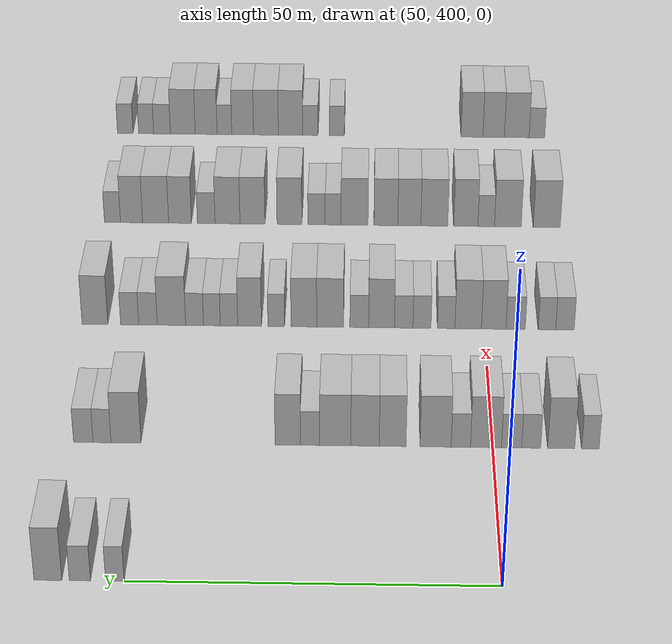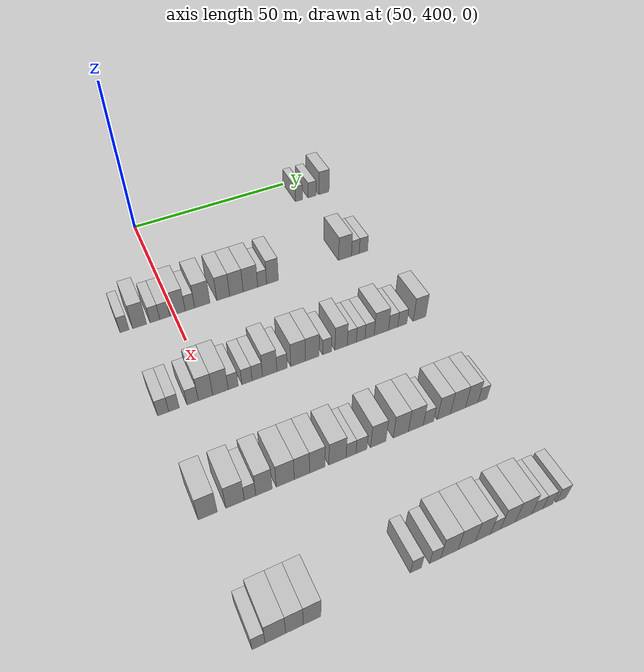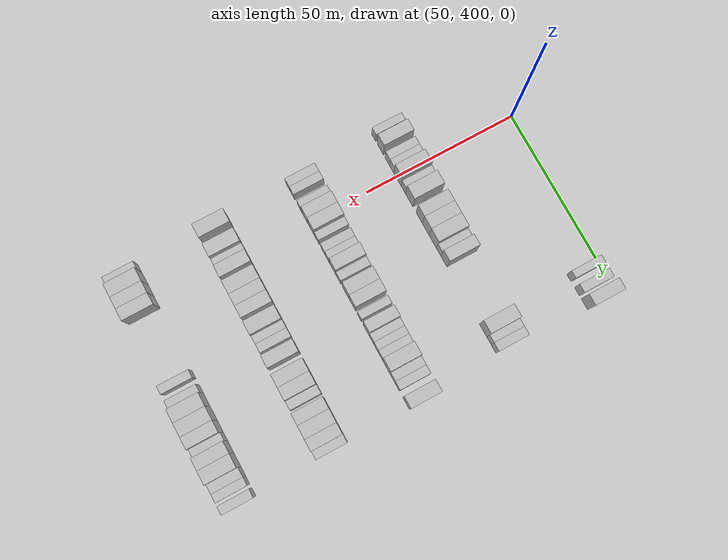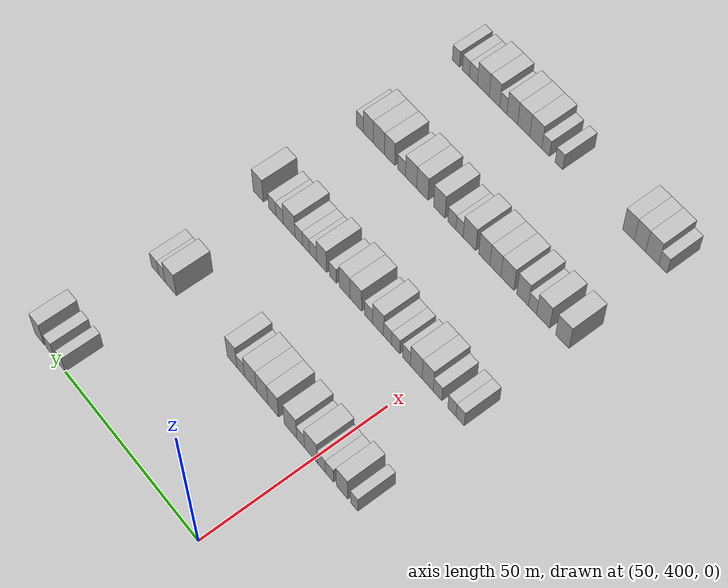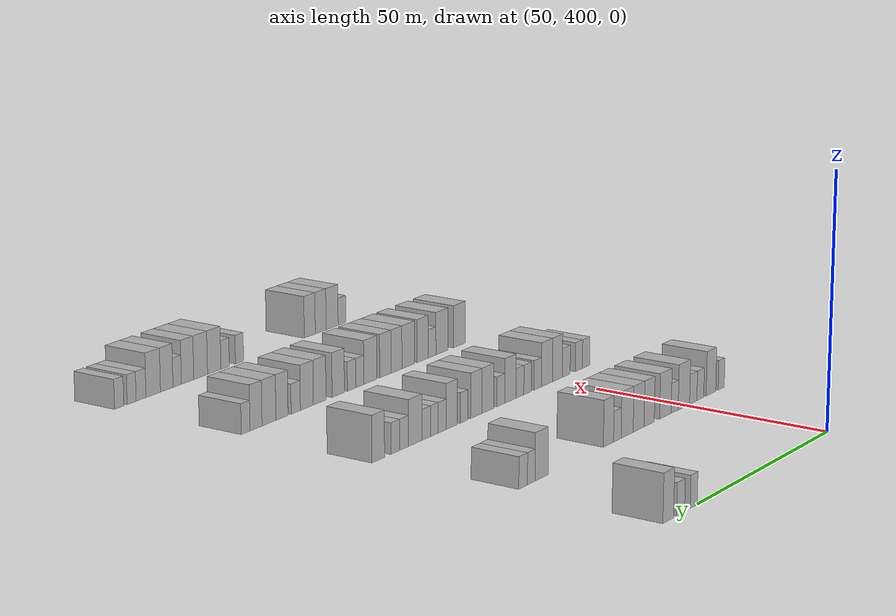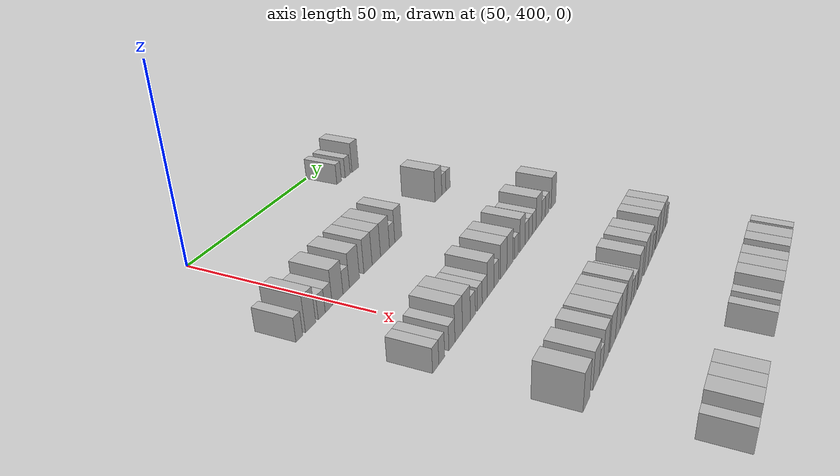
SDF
<sdf version="1.6">
 <world name="default">
  <model name="building_443">
   <static>1</static>
   <pose>55.0000 451.2948 0 0.000000 0.000000 0.000000</pose>
   <link name="link">
    <pose>0 0 3.00 0 0 0</pose>
    <collision name="collision"><geometry><box><size>10.0000 2.4680 6.0000</size></box></geometry></collision>
    <visual name="visual">
     <cast_shadows>0</cast_shadows>
     <geometry><box><size>10.0000 2.4680 6.0000</size></box></geometry>
     <material>
      <script>
       <uri>model://HANNAS_wall/materials/scripts</uri>
       <uri>model://HANNAS_wall/materials/textures</uri>
       <name>vrc/HANNAS_wall</name>
      </script>
     </material>
    </visual>
   </link>
  </model>
  <model name="building_444">
   <static>1</static>
   <pose>55.0000 455.9339 0 0.000000 0.000000 0.000000</pose>
   <link name="link">
    <pose>0 0 3.00 0 0 0</pose>
    <collision name="collision"><geometry><box><size>10.0000 2.8102 6.0000</size></box></geometry></collision>
    <visual name="visual">
     <cast_shadows>0</cast_shadows>
     <geometry><box><size>10.0000 2.8102 6.0000</size></box></geometry>
     <material>
      <script>
       <uri>model://HANNAS_wall/materials/scripts</uri>
       <uri>model://HANNAS_wall/materials/textures</uri>
       <name>vrc/HANNAS_wall</name>
      </script>
     </material>
    </visual>
   </link>
  </model>
  <model name="building_445">
   <static>1</static>
   <pose>55.0000 460.1906 0 0.000000 0.000000 0.000000</pose>
   <link name="link">
    <pose>0 0 4.50 0 0 0</pose>
    <collision name="collision"><geometry><box><size>10.0000 3.7033 9.0000</size></box></geometry></collision>
    <visual name="visual">
     <cast_shadows>0</cast_shadows>
     <geometry><box><size>10.0000 3.7033 9.0000</size></box></geometry>
     <material>
      <script>
       <uri>model://HANNAS_wall/materials/scripts</uri>
       <uri>model://HANNAS_wall/materials/textures</uri>
       <name>vrc/HANNAS_wall</name>
      </script>
     </material>
    </visual>
   </link>
  </model>
  <model name="building_653">
   <static>1</static>
   <pose>85.0000 386.0346 0 0.000000 0.000000 0.000000</pose>
   <link name="link">
    <pose>0 0 3.00 0 0 0</pose>
    <collision name="collision"><geometry><box><size>10.0000 2.4896 6.0000</size></box></geometry></collision>
    <visual name="visual">
     <cast_shadows>0</cast_shadows>
     <geometry><box><size>10.0000 2.4896 6.0000</size></box></geometry>
     <material>
      <script>
       <uri>model://HANNAS_wall/materials/scripts</uri>
       <uri>model://HANNAS_wall/materials/textures</uri>
       <name>vrc/HANNAS_wall</name>
      </script>
     </material>
    </visual>
   </link>
  </model>
  <model name="building_654">
   <static>1</static>
   <pose>85.0000 390.2133 0 0.000000 0.000000 0.000000</pose>
   <link name="link">
    <pose>0 0 4.50 0 0 0</pose>
    <collision name="collision"><geometry><box><size>10.0000 3.8679 9.0000</size></box></geometry></collision>
    <visual name="visual">
     <cast_shadows>0</cast_shadows>
     <geometry><box><size>10.0000 3.8679 9.0000</size></box></geometry>
     <material>
      <script>
       <uri>model://HANNAS_wall/materials/scripts</uri>
       <uri>model://HANNAS_wall/materials/textures</uri>
       <name>vrc/HANNAS_wall</name>
      </script>
     </material>
    </visual>
   </link>
  </model>
  <model name="building_655">
   <static>1</static>
   <pose>85.0000 394.5141 0 0.000000 0.000000 0.000000</pose>
   <link name="link">
    <pose>0 0 3.00 0 0 0</pose>
    <collision name="collision"><geometry><box><size>10.0000 2.7336 6.0000</size></box></geometry></collision>
    <visual name="visual">
     <cast_shadows>0</cast_shadows>
     <geometry><box><size>10.0000 2.7336 6.0000</size></box></geometry>
     <material>
      <script>
       <uri>model://HANNAS_wall/materials/scripts</uri>
       <uri>model://HANNAS_wall/materials/textures</uri>
       <name>vrc/HANNAS_wall</name>
      </script>
     </material>
    </visual>
   </link>
  </model>
  <model name="building_656">
   <static>1</static>
   <pose>85.0000 397.3212 0 0.000000 0.000000 0.000000</pose>
   <link name="link">
    <pose>0 0 3.00 0 0 0</pose>
    <collision name="collision"><geometry><box><size>10.0000 2.8807 6.0000</size></box></geometry></collision>
    <visual name="visual">
     <cast_shadows>0</cast_shadows>
     <geometry><box><size>10.0000 2.8807 6.0000</size></box></geometry>
     <material>
      <script>
       <uri>model://HANNAS_wall/materials/scripts</uri>
       <uri>model://HANNAS_wall/materials/textures</uri>
       <name>vrc/HANNAS_wall</name>
      </script>
     </material>
    </visual>
   </link>
  </model>
  <model name="building_657">
   <static>1</static>
   <pose>85.0000 400.9855 0 0.000000 0.000000 0.000000</pose>
   <link name="link">
    <pose>0 0 4.50 0 0 0</pose>
    <collision name="collision"><geometry><box><size>10.0000 4.4481 9.0000</size></box></geometry></collision>
    <visual name="visual">
     <cast_shadows>0</cast_shadows>
     <geometry><box><size>10.0000 4.4481 9.0000</size></box></geometry>
     <material>
      <script>
       <uri>model://HANNAS_wall/materials/scripts</uri>
       <uri>model://HANNAS_wall/materials/textures</uri>
       <name>vrc/HANNAS_wall</name>
      </script>
     </material>
    </visual>
   </link>
  </model>
  <model name="building_658">
   <static>1</static>
   <pose>85.0000 404.5946 0 0.000000 0.000000 0.000000</pose>
   <link name="link">
    <pose>0 0 3.00 0 0 0</pose>
    <collision name="collision"><geometry><box><size>10.0000 2.7700 6.0000</size></box></geometry></collision>
    <visual name="visual">
     <cast_shadows>0</cast_shadows>
     <geometry><box><size>10.0000 2.7700 6.0000</size></box></geometry>
     <material>
      <script>
       <uri>model://HANNAS_wall/materials/scripts</uri>
       <uri>model://HANNAS_wall/materials/textures</uri>
       <name>vrc/HANNAS_wall</name>
      </script>
     </material>
    </visual>
   </link>
  </model>
  <model name="building_659">
   <static>1</static>
   <pose>85.0000 408.2170 0 0.000000 0.000000 0.000000</pose>
   <link name="link">
    <pose>0 0 4.50 0 0 0</pose>
    <collision name="collision"><geometry><box><size>10.0000 4.4750 9.0000</size></box></geometry></collision>
    <visual name="visual">
     <cast_shadows>0</cast_shadows>
     <geometry><box><size>10.0000 4.4750 9.0000</size></box></geometry>
     <material>
      <script>
       <uri>model://HANNAS_wall/materials/scripts</uri>
       <uri>model://HANNAS_wall/materials/textures</uri>
       <name>vrc/HANNAS_wall</name>
      </script>
     </material>
    </visual>
   </link>
  </model>
  <model name="building_660">
   <static>1</static>
   <pose>85.0000 414.3831 0 0.000000 0.000000 0.000000</pose>
   <link name="link">
    <pose>0 0 4.50 0 0 0</pose>
    <collision name="collision"><geometry><box><size>10.0000 3.8571 9.0000</size></box></geometry></collision>
    <visual name="visual">
     <cast_shadows>0</cast_shadows>
     <geometry><box><size>10.0000 3.8571 9.0000</size></box></geometry>
     <material>
      <script>
       <uri>model://HANNAS_wall/materials/scripts</uri>
       <uri>model://HANNAS_wall/materials/textures</uri>
       <name>vrc/HANNAS_wall</name>
      </script>
     </material>
    </visual>
   </link>
  </model>
  <model name="building_661">
   <static>1</static>
   <pose>85.0000 418.3494 0 0.000000 0.000000 0.000000</pose>
   <link name="link">
    <pose>0 0 4.50 0 0 0</pose>
    <collision name="collision"><geometry><box><size>10.0000 4.0757 9.0000</size></box></geometry></collision>
    <visual name="visual">
     <cast_shadows>0</cast_shadows>
     <geometry><box><size>10.0000 4.0757 9.0000</size></box></geometry>
     <material>
      <script>
       <uri>model://HANNAS_wall/materials/scripts</uri>
       <uri>model://HANNAS_wall/materials/textures</uri>
       <name>vrc/HANNAS_wall</name>
      </script>
     </material>
    </visual>
   </link>
  </model>
  <model name="building_662">
   <static>1</static>
   <pose>85.0000 422.6198 0 0.000000 0.000000 0.000000</pose>
   <link name="link">
    <pose>0 0 4.50 0 0 0</pose>
    <collision name="collision"><geometry><box><size>10.0000 4.4651 9.0000</size></box></geometry></collision>
    <visual name="visual">
     <cast_shadows>0</cast_shadows>
     <geometry><box><size>10.0000 4.4651 9.0000</size></box></geometry>
     <material>
      <script>
       <uri>model://HANNAS_wall/materials/scripts</uri>
       <uri>model://HANNAS_wall/materials/textures</uri>
       <name>vrc/HANNAS_wall</name>
      </script>
     </material>
    </visual>
   </link>
  </model>
  <model name="building_663">
   <static>1</static>
   <pose>85.0000 426.2338 0 0.000000 0.000000 0.000000</pose>
   <link name="link">
    <pose>0 0 3.00 0 0 0</pose>
    <collision name="collision"><geometry><box><size>10.0000 2.7631 6.0000</size></box></geometry></collision>
    <visual name="visual">
     <cast_shadows>0</cast_shadows>
     <geometry><box><size>10.0000 2.7631 6.0000</size></box></geometry>
     <material>
      <script>
       <uri>model://HANNAS_wall/materials/scripts</uri>
       <uri>model://HANNAS_wall/materials/textures</uri>
       <name>vrc/HANNAS_wall</name>
      </script>
     </material>
    </visual>
   </link>
  </model>
  <model name="building_664">
   <static>1</static>
   <pose>85.0000 429.4357 0 0.000000 0.000000 0.000000</pose>
   <link name="link">
    <pose>0 0 4.50 0 0 0</pose>
    <collision name="collision"><geometry><box><size>10.0000 3.6407 9.0000</size></box></geometry></collision>
    <visual name="visual">
     <cast_shadows>0</cast_shadows>
     <geometry><box><size>10.0000 3.6407 9.0000</size></box></geometry>
     <material>
      <script>
       <uri>model://HANNAS_wall/materials/scripts</uri>
       <uri>model://HANNAS_wall/materials/textures</uri>
       <name>vrc/HANNAS_wall</name>
      </script>
     </material>
    </visual>
   </link>
  </model>
  <model name="building_665">
   <static>1</static>
   <pose>85.0000 452.7243 0 0.000000 0.000000 0.000000</pose>
   <link name="link">
    <pose>0 0 4.50 0 0 0</pose>
    <collision name="collision"><geometry><box><size>10.0000 4.3122 9.0000</size></box></geometry></collision>
    <visual name="visual">
     <cast_shadows>0</cast_shadows>
     <geometry><box><size>10.0000 4.3122 9.0000</size></box></geometry>
     <material>
      <script>
       <uri>model://HANNAS_wall/materials/scripts</uri>
       <uri>model://HANNAS_wall/materials/textures</uri>
       <name>vrc/HANNAS_wall</name>
      </script>
     </material>
    </visual>
   </link>
  </model>
  <model name="building_666">
   <static>1</static>
   <pose>85.0000 456.1709 0 0.000000 0.000000 0.000000</pose>
   <link name="link">
    <pose>0 0 3.00 0 0 0</pose>
    <collision name="collision"><geometry><box><size>10.0000 2.5810 6.0000</size></box></geometry></collision>
    <visual name="visual">
     <cast_shadows>0</cast_shadows>
     <geometry><box><size>10.0000 2.5810 6.0000</size></box></geometry>
     <material>
      <script>
       <uri>model://HANNAS_wall/materials/scripts</uri>
       <uri>model://HANNAS_wall/materials/textures</uri>
       <name>vrc/HANNAS_wall</name>
      </script>
     </material>
    </visual>
   </link>
  </model>
  <model name="building_667">
   <static>1</static>
   <pose>85.0000 458.8748 0 0.000000 0.000000 0.000000</pose>
   <link name="link">
    <pose>0 0 3.00 0 0 0</pose>
    <collision name="collision"><geometry><box><size>10.0000 2.8269 6.0000</size></box></geometry></collision>
    <visual name="visual">
     <cast_shadows>0</cast_shadows>
     <geometry><box><size>10.0000 2.8269 6.0000</size></box></geometry>
     <material>
      <script>
       <uri>model://HANNAS_wall/materials/scripts</uri>
       <uri>model://HANNAS_wall/materials/textures</uri>
       <name>vrc/HANNAS_wall</name>
      </script>
     </material>
    </visual>
   </link>
  </model>
  <model name="building_879">
   <static>1</static>
   <pose>115.0000 387.6289 0 0.000000 0.000000 0.000000</pose>
   <link name="link">
    <pose>0 0 3.00 0 0 0</pose>
    <collision name="collision"><geometry><box><size>10.0000 2.8525 6.0000</size></box></geometry></collision>
    <visual name="visual">
     <cast_shadows>0</cast_shadows>
     <geometry><box><size>10.0000 2.8525 6.0000</size></box></geometry>
     <material>
      <script>
       <uri>model://HANNAS_wall/materials/scripts</uri>
       <uri>model://HANNAS_wall/materials/textures</uri>
       <name>vrc/HANNAS_wall</name>
      </script>
     </material>
    </visual>
   </link>
  </model>
  <model name="building_880">
   <static>1</static>
   <pose>115.0000 390.4092 0 0.000000 0.000000 0.000000</pose>
   <link name="link">
    <pose>0 0 3.00 0 0 0</pose>
    <collision name="collision"><geometry><box><size>10.0000 2.7081 6.0000</size></box></geometry></collision>
    <visual name="visual">
     <cast_shadows>0</cast_shadows>
     <geometry><box><size>10.0000 2.7081 6.0000</size></box></geometry>
     <material>
      <script>
       <uri>model://HANNAS_wall/materials/scripts</uri>
       <uri>model://HANNAS_wall/materials/textures</uri>
       <name>vrc/HANNAS_wall</name>
      </script>
     </material>
    </visual>
   </link>
  </model>
  <model name="building_881">
   <static>1</static>
   <pose>115.0000 395.2450 0 0.000000 0.000000 0.000000</pose>
   <link name="link">
    <pose>0 0 3.00 0 0 0</pose>
    <collision name="collision"><geometry><box><size>10.0000 2.9635 6.0000</size></box></geometry></collision>
    <visual name="visual">
     <cast_shadows>0</cast_shadows>
     <geometry><box><size>10.0000 2.9635 6.0000</size></box></geometry>
     <material>
      <script>
       <uri>model://HANNAS_wall/materials/scripts</uri>
       <uri>model://HANNAS_wall/materials/textures</uri>
       <name>vrc/HANNAS_wall</name>
      </script>
     </material>
    </visual>
   </link>
  </model>
  <model name="building_882">
   <static>1</static>
   <pose>115.0000 398.6318 0 0.000000 0.000000 0.000000</pose>
   <link name="link">
    <pose>0 0 4.50 0 0 0</pose>
    <collision name="collision"><geometry><box><size>10.0000 3.8100 9.0000</size></box></geometry></collision>
    <visual name="visual">
     <cast_shadows>0</cast_shadows>
     <geometry><box><size>10.0000 3.8100 9.0000</size></box></geometry>
     <material>
      <script>
       <uri>model://HANNAS_wall/materials/scripts</uri>
       <uri>model://HANNAS_wall/materials/textures</uri>
       <name>vrc/HANNAS_wall</name>
      </script>
     </material>
    </visual>
   </link>
  </model>
  <model name="building_883">
   <static>1</static>
   <pose>115.0000 402.5806 0 0.000000 0.000000 0.000000</pose>
   <link name="link">
    <pose>0 0 4.50 0 0 0</pose>
    <collision name="collision"><geometry><box><size>10.0000 4.0876 9.0000</size></box></geometry></collision>
    <visual name="visual">
     <cast_shadows>0</cast_shadows>
     <geometry><box><size>10.0000 4.0876 9.0000</size></box></geometry>
     <material>
      <script>
       <uri>model://HANNAS_wall/materials/scripts</uri>
       <uri>model://HANNAS_wall/materials/textures</uri>
       <name>vrc/HANNAS_wall</name>
      </script>
     </material>
    </visual>
   </link>
  </model>
  <model name="building_884">
   <static>1</static>
   <pose>115.0000 405.9813 0 0.000000 0.000000 0.000000</pose>
   <link name="link">
    <pose>0 0 3.00 0 0 0</pose>
    <collision name="collision"><geometry><box><size>10.0000 2.7137 6.0000</size></box></geometry></collision>
    <visual name="visual">
     <cast_shadows>0</cast_shadows>
     <geometry><box><size>10.0000 2.7137 6.0000</size></box></geometry>
     <material>
      <script>
       <uri>model://HANNAS_wall/materials/scripts</uri>
       <uri>model://HANNAS_wall/materials/textures</uri>
       <name>vrc/HANNAS_wall</name>
      </script>
     </material>
    </visual>
   </link>
  </model>
  <model name="building_885">
   <static>1</static>
   <pose>115.0000 409.7345 0 0.000000 0.000000 0.000000</pose>
   <link name="link">
    <pose>0 0 3.00 0 0 0</pose>
    <collision name="collision"><geometry><box><size>10.0000 2.7929 6.0000</size></box></geometry></collision>
    <visual name="visual">
     <cast_shadows>0</cast_shadows>
     <geometry><box><size>10.0000 2.7929 6.0000</size></box></geometry>
     <material>
      <script>
       <uri>model://HANNAS_wall/materials/scripts</uri>
       <uri>model://HANNAS_wall/materials/textures</uri>
       <name>vrc/HANNAS_wall</name>
      </script>
     </material>
    </visual>
   </link>
  </model>
  <model name="building_886">
   <static>1</static>
   <pose>115.0000 412.5648 0 0.000000 0.000000 0.000000</pose>
   <link name="link">
    <pose>0 0 3.00 0 0 0</pose>
    <collision name="collision"><geometry><box><size>10.0000 2.8676 6.0000</size></box></geometry></collision>
    <visual name="visual">
     <cast_shadows>0</cast_shadows>
     <geometry><box><size>10.0000 2.8676 6.0000</size></box></geometry>
     <material>
      <script>
       <uri>model://HANNAS_wall/materials/scripts</uri>
       <uri>model://HANNAS_wall/materials/textures</uri>
       <name>vrc/HANNAS_wall</name>
      </script>
     </material>
    </visual>
   </link>
  </model>
  <model name="building_887">
   <static>1</static>
   <pose>115.0000 415.9972 0 0.000000 0.000000 0.000000</pose>
   <link name="link">
    <pose>0 0 4.50 0 0 0</pose>
    <collision name="collision"><geometry><box><size>10.0000 3.9973 9.0000</size></box></geometry></collision>
    <visual name="visual">
     <cast_shadows>0</cast_shadows>
     <geometry><box><size>10.0000 3.9973 9.0000</size></box></geometry>
     <material>
      <script>
       <uri>model://HANNAS_wall/materials/scripts</uri>
       <uri>model://HANNAS_wall/materials/textures</uri>
       <name>vrc/HANNAS_wall</name>
      </script>
     </material>
    </visual>
   </link>
  </model>
  <model name="building_888">
   <static>1</static>
   <pose>115.0000 419.4442 0 0.000000 0.000000 0.000000</pose>
   <link name="link">
    <pose>0 0 3.00 0 0 0</pose>
    <collision name="collision"><geometry><box><size>10.0000 2.8966 6.0000</size></box></geometry></collision>
    <visual name="visual">
     <cast_shadows>0</cast_shadows>
     <geometry><box><size>10.0000 2.8966 6.0000</size></box></geometry>
     <material>
      <script>
       <uri>model://HANNAS_wall/materials/scripts</uri>
       <uri>model://HANNAS_wall/materials/textures</uri>
       <name>vrc/HANNAS_wall</name>
      </script>
     </material>
    </visual>
   </link>
  </model>
  <model name="building_889">
   <static>1</static>
   <pose>115.0000 423.9724 0 0.000000 0.000000 0.000000</pose>
   <link name="link">
    <pose>0 0 4.50 0 0 0</pose>
    <collision name="collision"><geometry><box><size>10.0000 4.1599 9.0000</size></box></geometry></collision>
    <visual name="visual">
     <cast_shadows>0</cast_shadows>
     <geometry><box><size>10.0000 4.1599 9.0000</size></box></geometry>
     <material>
      <script>
       <uri>model://HANNAS_wall/materials/scripts</uri>
       <uri>model://HANNAS_wall/materials/textures</uri>
       <name>vrc/HANNAS_wall</name>
      </script>
     </material>
    </visual>
   </link>
  </model>
  <model name="building_890">
   <static>1</static>
   <pose>115.0000 428.0381 0 0.000000 0.000000 0.000000</pose>
   <link name="link">
    <pose>0 0 4.50 0 0 0</pose>
    <collision name="collision"><geometry><box><size>10.0000 3.9715 9.0000</size></box></geometry></collision>
    <visual name="visual">
     <cast_shadows>0</cast_shadows>
     <geometry><box><size>10.0000 3.9715 9.0000</size></box></geometry>
     <material>
      <script>
       <uri>model://HANNAS_wall/materials/scripts</uri>
       <uri>model://HANNAS_wall/materials/textures</uri>
       <name>vrc/HANNAS_wall</name>
      </script>
     </material>
    </visual>
   </link>
  </model>
  <model name="building_891">
   <static>1</static>
   <pose>115.0000 432.3154 0 0.000000 0.000000 0.000000</pose>
   <link name="link">
    <pose>0 0 3.00 0 0 0</pose>
    <collision name="collision"><geometry><box><size>10.0000 2.5831 6.0000</size></box></geometry></collision>
    <visual name="visual">
     <cast_shadows>0</cast_shadows>
     <geometry><box><size>10.0000 2.5831 6.0000</size></box></geometry>
     <material>
      <script>
       <uri>model://HANNAS_wall/materials/scripts</uri>
       <uri>model://HANNAS_wall/materials/textures</uri>
       <name>vrc/HANNAS_wall</name>
      </script>
     </material>
    </visual>
   </link>
  </model>
  <model name="building_892">
   <static>1</static>
   <pose>115.0000 436.4440 0 0.000000 0.000000 0.000000</pose>
   <link name="link">
    <pose>0 0 4.50 0 0 0</pose>
    <collision name="collision"><geometry><box><size>10.0000 3.6741 9.0000</size></box></geometry></collision>
    <visual name="visual">
     <cast_shadows>0</cast_shadows>
     <geometry><box><size>10.0000 3.6741 9.0000</size></box></geometry>
     <material>
      <script>
       <uri>model://HANNAS_wall/materials/scripts</uri>
       <uri>model://HANNAS_wall/materials/textures</uri>
       <name>vrc/HANNAS_wall</name>
      </script>
     </material>
    </visual>
   </link>
  </model>
  <model name="building_893">
   <static>1</static>
   <pose>115.0000 439.6329 0 0.000000 0.000000 0.000000</pose>
   <link name="link">
    <pose>0 0 3.00 0 0 0</pose>
    <collision name="collision"><geometry><box><size>10.0000 2.7037 6.0000</size></box></geometry></collision>
    <visual name="visual">
     <cast_shadows>0</cast_shadows>
     <geometry><box><size>10.0000 2.7037 6.0000</size></box></geometry>
     <material>
      <script>
       <uri>model://HANNAS_wall/materials/scripts</uri>
       <uri>model://HANNAS_wall/materials/textures</uri>
       <name>vrc/HANNAS_wall</name>
      </script>
     </material>
    </visual>
   </link>
  </model>
  <model name="building_894">
   <static>1</static>
   <pose>115.0000 442.2941 0 0.000000 0.000000 0.000000</pose>
   <link name="link">
    <pose>0 0 3.00 0 0 0</pose>
    <collision name="collision"><geometry><box><size>10.0000 2.6188 6.0000</size></box></geometry></collision>
    <visual name="visual">
     <cast_shadows>0</cast_shadows>
     <geometry><box><size>10.0000 2.6188 6.0000</size></box></geometry>
     <material>
      <script>
       <uri>model://HANNAS_wall/materials/scripts</uri>
       <uri>model://HANNAS_wall/materials/textures</uri>
       <name>vrc/HANNAS_wall</name>
      </script>
     </material>
    </visual>
   </link>
  </model>
  <model name="building_895">
   <static>1</static>
   <pose>115.0000 444.9915 0 0.000000 0.000000 0.000000</pose>
   <link name="link">
    <pose>0 0 3.00 0 0 0</pose>
    <collision name="collision"><geometry><box><size>10.0000 2.7758 6.0000</size></box></geometry></collision>
    <visual name="visual">
     <cast_shadows>0</cast_shadows>
     <geometry><box><size>10.0000 2.7758 6.0000</size></box></geometry>
     <material>
      <script>
       <uri>model://HANNAS_wall/materials/scripts</uri>
       <uri>model://HANNAS_wall/materials/textures</uri>
       <name>vrc/HANNAS_wall</name>
      </script>
     </material>
    </visual>
   </link>
  </model>
  <model name="building_896">
   <static>1</static>
   <pose>115.0000 448.5817 0 0.000000 0.000000 0.000000</pose>
   <link name="link">
    <pose>0 0 4.50 0 0 0</pose>
    <collision name="collision"><geometry><box><size>10.0000 4.4046 9.0000</size></box></geometry></collision>
    <visual name="visual">
     <cast_shadows>0</cast_shadows>
     <geometry><box><size>10.0000 4.4046 9.0000</size></box></geometry>
     <material>
      <script>
       <uri>model://HANNAS_wall/materials/scripts</uri>
       <uri>model://HANNAS_wall/materials/textures</uri>
       <name>vrc/HANNAS_wall</name>
      </script>
     </material>
    </visual>
   </link>
  </model>
  <model name="building_897">
   <static>1</static>
   <pose>115.0000 452.2297 0 0.000000 0.000000 0.000000</pose>
   <link name="link">
    <pose>0 0 3.00 0 0 0</pose>
    <collision name="collision"><geometry><box><size>10.0000 2.8915 6.0000</size></box></geometry></collision>
    <visual name="visual">
     <cast_shadows>0</cast_shadows>
     <geometry><box><size>10.0000 2.8915 6.0000</size></box></geometry>
     <material>
      <script>
       <uri>model://HANNAS_wall/materials/scripts</uri>
       <uri>model://HANNAS_wall/materials/textures</uri>
       <name>vrc/HANNAS_wall</name>
      </script>
     </material>
    </visual>
   </link>
  </model>
  <model name="building_898">
   <static>1</static>
   <pose>115.0000 455.0792 0 0.000000 0.000000 0.000000</pose>
   <link name="link">
    <pose>0 0 3.00 0 0 0</pose>
    <collision name="collision"><geometry><box><size>10.0000 2.8074 6.0000</size></box></geometry></collision>
    <visual name="visual">
     <cast_shadows>0</cast_shadows>
     <geometry><box><size>10.0000 2.8074 6.0000</size></box></geometry>
     <material>
      <script>
       <uri>model://HANNAS_wall/materials/scripts</uri>
       <uri>model://HANNAS_wall/materials/textures</uri>
       <name>vrc/HANNAS_wall</name>
      </script>
     </material>
    </visual>
   </link>
  </model>
  <model name="building_899">
   <static>1</static>
   <pose>115.0000 460.4758 0 0.000000 0.000000 0.000000</pose>
   <link name="link">
    <pose>0 0 4.50 0 0 0</pose>
    <collision name="collision"><geometry><box><size>10.0000 3.9858 9.0000</size></box></geometry></collision>
    <visual name="visual">
     <cast_shadows>0</cast_shadows>
     <geometry><box><size>10.0000 3.9858 9.0000</size></box></geometry>
     <material>
      <script>
       <uri>model://HANNAS_wall/materials/scripts</uri>
       <uri>model://HANNAS_wall/materials/textures</uri>
       <name>vrc/HANNAS_wall</name>
      </script>
     </material>
    </visual>
   </link>
  </model>
  <model name="building_1114">
   <static>1</static>
   <pose>145.0000 388.6000 0 0.000000 0.000000 0.000000</pose>
   <link name="link">
    <pose>0 0 4.50 0 0 0</pose>
    <collision name="collision"><geometry><box><size>10.0000 4.4627 9.0000</size></box></geometry></collision>
    <visual name="visual">
     <cast_shadows>0</cast_shadows>
     <geometry><box><size>10.0000 4.4627 9.0000</size></box></geometry>
     <material>
      <script>
       <uri>model://HANNAS_wall/materials/scripts</uri>
       <uri>model://HANNAS_wall/materials/textures</uri>
       <name>vrc/HANNAS_wall</name>
      </script>
     </material>
    </visual>
   </link>
  </model>
  <model name="building_1115">
   <static>1</static>
   <pose>145.0000 395.0432 0 0.000000 0.000000 0.000000</pose>
   <link name="link">
    <pose>0 0 4.50 0 0 0</pose>
    <collision name="collision"><geometry><box><size>10.0000 4.4238 9.0000</size></box></geometry></collision>
    <visual name="visual">
     <cast_shadows>0</cast_shadows>
     <geometry><box><size>10.0000 4.4238 9.0000</size></box></geometry>
     <material>
      <script>
       <uri>model://HANNAS_wall/materials/scripts</uri>
       <uri>model://HANNAS_wall/materials/textures</uri>
       <name>vrc/HANNAS_wall</name>
      </script>
     </material>
    </visual>
   </link>
  </model>
  <model name="building_1116">
   <static>1</static>
   <pose>145.0000 398.6340 0 0.000000 0.000000 0.000000</pose>
   <link name="link">
    <pose>0 0 3.00 0 0 0</pose>
    <collision name="collision"><geometry><box><size>10.0000 2.7577 6.0000</size></box></geometry></collision>
    <visual name="visual">
     <cast_shadows>0</cast_shadows>
     <geometry><box><size>10.0000 2.7577 6.0000</size></box></geometry>
     <material>
      <script>
       <uri>model://HANNAS_wall/materials/scripts</uri>
       <uri>model://HANNAS_wall/materials/textures</uri>
       <name>vrc/HANNAS_wall</name>
      </script>
     </material>
    </visual>
   </link>
  </model>
  <model name="building_1117">
   <static>1</static>
   <pose>145.0000 402.0169 0 0.000000 0.000000 0.000000</pose>
   <link name="link">
    <pose>0 0 4.50 0 0 0</pose>
    <collision name="collision"><geometry><box><size>10.0000 4.0082 9.0000</size></box></geometry></collision>
    <visual name="visual">
     <cast_shadows>0</cast_shadows>
     <geometry><box><size>10.0000 4.0082 9.0000</size></box></geometry>
     <material>
      <script>
       <uri>model://HANNAS_wall/materials/scripts</uri>
       <uri>model://HANNAS_wall/materials/textures</uri>
       <name>vrc/HANNAS_wall</name>
      </script>
     </material>
    </visual>
   </link>
  </model>
  <model name="building_1118">
   <static>1</static>
   <pose>145.0000 407.2508 0 0.000000 0.000000 0.000000</pose>
   <link name="link">
    <pose>0 0 4.50 0 0 0</pose>
    <collision name="collision"><geometry><box><size>10.0000 4.4595 9.0000</size></box></geometry></collision>
    <visual name="visual">
     <cast_shadows>0</cast_shadows>
     <geometry><box><size>10.0000 4.4595 9.0000</size></box></geometry>
     <material>
      <script>
       <uri>model://HANNAS_wall/materials/scripts</uri>
       <uri>model://HANNAS_wall/materials/textures</uri>
       <name>vrc/HANNAS_wall</name>
      </script>
     </material>
    </visual>
   </link>
  </model>
  <model name="building_1119">
   <static>1</static>
   <pose>145.0000 411.4049 0 0.000000 0.000000 0.000000</pose>
   <link name="link">
    <pose>0 0 4.50 0 0 0</pose>
    <collision name="collision"><geometry><box><size>10.0000 3.8488 9.0000</size></box></geometry></collision>
    <visual name="visual">
     <cast_shadows>0</cast_shadows>
     <geometry><box><size>10.0000 3.8488 9.0000</size></box></geometry>
     <material>
      <script>
       <uri>model://HANNAS_wall/materials/scripts</uri>
       <uri>model://HANNAS_wall/materials/textures</uri>
       <name>vrc/HANNAS_wall</name>
      </script>
     </material>
    </visual>
   </link>
  </model>
  <model name="building_1120">
   <static>1</static>
   <pose>145.0000 415.2962 0 0.000000 0.000000 0.000000</pose>
   <link name="link">
    <pose>0 0 4.50 0 0 0</pose>
    <collision name="collision"><geometry><box><size>10.0000 3.9336 9.0000</size></box></geometry></collision>
    <visual name="visual">
     <cast_shadows>0</cast_shadows>
     <geometry><box><size>10.0000 3.9336 9.0000</size></box></geometry>
     <material>
      <script>
       <uri>model://HANNAS_wall/materials/scripts</uri>
       <uri>model://HANNAS_wall/materials/textures</uri>
       <name>vrc/HANNAS_wall</name>
      </script>
     </material>
    </visual>
   </link>
  </model>
  <model name="building_1121">
   <static>1</static>
   <pose>145.0000 420.5055 0 0.000000 0.000000 0.000000</pose>
   <link name="link">
    <pose>0 0 4.50 0 0 0</pose>
    <collision name="collision"><geometry><box><size>10.0000 4.4851 9.0000</size></box></geometry></collision>
    <visual name="visual">
     <cast_shadows>0</cast_shadows>
     <geometry><box><size>10.0000 4.4851 9.0000</size></box></geometry>
     <material>
      <script>
       <uri>model://HANNAS_wall/materials/scripts</uri>
       <uri>model://HANNAS_wall/materials/textures</uri>
       <name>vrc/HANNAS_wall</name>
      </script>
     </material>
    </visual>
   </link>
  </model>
  <model name="building_1122">
   <static>1</static>
   <pose>145.0000 424.0607 0 0.000000 0.000000 0.000000</pose>
   <link name="link">
    <pose>0 0 3.00 0 0 0</pose>
    <collision name="collision"><geometry><box><size>10.0000 2.6252 6.0000</size></box></geometry></collision>
    <visual name="visual">
     <cast_shadows>0</cast_shadows>
     <geometry><box><size>10.0000 2.6252 6.0000</size></box></geometry>
     <material>
      <script>
       <uri>model://HANNAS_wall/materials/scripts</uri>
       <uri>model://HANNAS_wall/materials/textures</uri>
       <name>vrc/HANNAS_wall</name>
      </script>
     </material>
    </visual>
   </link>
  </model>
  <model name="building_1123">
   <static>1</static>
   <pose>145.0000 426.8190 0 0.000000 0.000000 0.000000</pose>
   <link name="link">
    <pose>0 0 3.00 0 0 0</pose>
    <collision name="collision"><geometry><box><size>10.0000 2.8914 6.0000</size></box></geometry></collision>
    <visual name="visual">
     <cast_shadows>0</cast_shadows>
     <geometry><box><size>10.0000 2.8914 6.0000</size></box></geometry>
     <material>
      <script>
       <uri>model://HANNAS_wall/materials/scripts</uri>
       <uri>model://HANNAS_wall/materials/textures</uri>
       <name>vrc/HANNAS_wall</name>
      </script>
     </material>
    </visual>
   </link>
  </model>
  <model name="building_1124">
   <static>1</static>
   <pose>145.0000 431.3267 0 0.000000 0.000000 0.000000</pose>
   <link name="link">
    <pose>0 0 4.50 0 0 0</pose>
    <collision name="collision"><geometry><box><size>10.0000 4.1241 9.0000</size></box></geometry></collision>
    <visual name="visual">
     <cast_shadows>0</cast_shadows>
     <geometry><box><size>10.0000 4.1241 9.0000</size></box></geometry>
     <material>
      <script>
       <uri>model://HANNAS_wall/materials/scripts</uri>
       <uri>model://HANNAS_wall/materials/textures</uri>
       <name>vrc/HANNAS_wall</name>
      </script>
     </material>
    </visual>
   </link>
  </model>
  <model name="building_1125">
   <static>1</static>
   <pose>145.0000 437.4746 0 0.000000 0.000000 0.000000</pose>
   <link name="link">
    <pose>0 0 4.50 0 0 0</pose>
    <collision name="collision"><geometry><box><size>10.0000 4.1716 9.0000</size></box></geometry></collision>
    <visual name="visual">
     <cast_shadows>0</cast_shadows>
     <geometry><box><size>10.0000 4.1716 9.0000</size></box></geometry>
     <material>
      <script>
       <uri>model://HANNAS_wall/materials/scripts</uri>
       <uri>model://HANNAS_wall/materials/textures</uri>
       <name>vrc/HANNAS_wall</name>
      </script>
     </material>
    </visual>
   </link>
  </model>
  <model name="building_1126">
   <static>1</static>
   <pose>145.0000 441.6348 0 0.000000 0.000000 0.000000</pose>
   <link name="link">
    <pose>0 0 4.50 0 0 0</pose>
    <collision name="collision"><geometry><box><size>10.0000 4.1490 9.0000</size></box></geometry></collision>
    <visual name="visual">
     <cast_shadows>0</cast_shadows>
     <geometry><box><size>10.0000 4.1490 9.0000</size></box></geometry>
     <material>
      <script>
       <uri>model://HANNAS_wall/materials/scripts</uri>
       <uri>model://HANNAS_wall/materials/textures</uri>
       <name>vrc/HANNAS_wall</name>
      </script>
     </material>
    </visual>
   </link>
  </model>
  <model name="building_1127">
   <static>1</static>
   <pose>145.0000 445.1799 0 0.000000 0.000000 0.000000</pose>
   <link name="link">
    <pose>0 0 3.00 0 0 0</pose>
    <collision name="collision"><geometry><box><size>10.0000 2.9412 6.0000</size></box></geometry></collision>
    <visual name="visual">
     <cast_shadows>0</cast_shadows>
     <geometry><box><size>10.0000 2.9412 6.0000</size></box></geometry>
     <material>
      <script>
       <uri>model://HANNAS_wall/materials/scripts</uri>
       <uri>model://HANNAS_wall/materials/textures</uri>
       <name>vrc/HANNAS_wall</name>
      </script>
     </material>
    </visual>
   </link>
  </model>
  <model name="building_1128">
   <static>1</static>
   <pose>145.0000 449.5493 0 0.000000 0.000000 0.000000</pose>
   <link name="link">
    <pose>0 0 4.50 0 0 0</pose>
    <collision name="collision"><geometry><box><size>10.0000 3.7976 9.0000</size></box></geometry></collision>
    <visual name="visual">
     <cast_shadows>0</cast_shadows>
     <geometry><box><size>10.0000 3.7976 9.0000</size></box></geometry>
     <material>
      <script>
       <uri>model://HANNAS_wall/materials/scripts</uri>
       <uri>model://HANNAS_wall/materials/textures</uri>
       <name>vrc/HANNAS_wall</name>
      </script>
     </material>
    </visual>
   </link>
  </model>
  <model name="building_1129">
   <static>1</static>
   <pose>145.0000 453.6212 0 0.000000 0.000000 0.000000</pose>
   <link name="link">
    <pose>0 0 4.50 0 0 0</pose>
    <collision name="collision"><geometry><box><size>10.0000 4.3463 9.0000</size></box></geometry></collision>
    <visual name="visual">
     <cast_shadows>0</cast_shadows>
     <geometry><box><size>10.0000 4.3463 9.0000</size></box></geometry>
     <material>
      <script>
       <uri>model://HANNAS_wall/materials/scripts</uri>
       <uri>model://HANNAS_wall/materials/textures</uri>
       <name>vrc/HANNAS_wall</name>
      </script>
     </material>
    </visual>
   </link>
  </model>
  <model name="building_1130">
   <static>1</static>
   <pose>145.0000 457.6430 0 0.000000 0.000000 0.000000</pose>
   <link name="link">
    <pose>0 0 4.50 0 0 0</pose>
    <collision name="collision"><geometry><box><size>10.0000 3.6972 9.0000</size></box></geometry></collision>
    <visual name="visual">
     <cast_shadows>0</cast_shadows>
     <geometry><box><size>10.0000 3.6972 9.0000</size></box></geometry>
     <material>
      <script>
       <uri>model://HANNAS_wall/materials/scripts</uri>
       <uri>model://HANNAS_wall/materials/textures</uri>
       <name>vrc/HANNAS_wall</name>
      </script>
     </material>
    </visual>
   </link>
  </model>
  <model name="building_1131">
   <static>1</static>
   <pose>145.0000 460.8229 0 0.000000 0.000000 0.000000</pose>
   <link name="link">
    <pose>0 0 3.00 0 0 0</pose>
    <collision name="collision"><geometry><box><size>10.0000 2.6626 6.0000</size></box></geometry></collision>
    <visual name="visual">
     <cast_shadows>0</cast_shadows>
     <geometry><box><size>10.0000 2.6626 6.0000</size></box></geometry>
     <material>
      <script>
       <uri>model://HANNAS_wall/materials/scripts</uri>
       <uri>model://HANNAS_wall/materials/textures</uri>
       <name>vrc/HANNAS_wall</name>
      </script>
     </material>
    </visual>
   </link>
  </model>
  <model name="building_1343">
   <static>1</static>
   <pose>175.0000 388.4919 0 0.000000 0.000000 0.000000</pose>
   <link name="link">
    <pose>0 0 3.00 0 0 0</pose>
    <collision name="collision"><geometry><box><size>10.0000 2.7625 6.0000</size></box></geometry></collision>
    <visual name="visual">
     <cast_shadows>0</cast_shadows>
     <geometry><box><size>10.0000 2.7625 6.0000</size></box></geometry>
     <material>
      <script>
       <uri>model://HANNAS_wall/materials/scripts</uri>
       <uri>model://HANNAS_wall/materials/textures</uri>
       <name>vrc/HANNAS_wall</name>
      </script>
     </material>
    </visual>
   </link>
  </model>
  <model name="building_1344">
   <static>1</static>
   <pose>175.0000 392.0506 0 0.000000 0.000000 0.000000</pose>
   <link name="link">
    <pose>0 0 4.50 0 0 0</pose>
    <collision name="collision"><geometry><box><size>10.0000 4.3549 9.0000</size></box></geometry></collision>
    <visual name="visual">
     <cast_shadows>0</cast_shadows>
     <geometry><box><size>10.0000 4.3549 9.0000</size></box></geometry>
     <material>
      <script>
       <uri>model://HANNAS_wall/materials/scripts</uri>
       <uri>model://HANNAS_wall/materials/textures</uri>
       <name>vrc/HANNAS_wall</name>
      </script>
     </material>
    </visual>
   </link>
  </model>
  <model name="building_1345">
   <static>1</static>
   <pose>175.0000 396.1382 0 0.000000 0.000000 0.000000</pose>
   <link name="link">
    <pose>0 0 4.50 0 0 0</pose>
    <collision name="collision"><geometry><box><size>10.0000 3.8204 9.0000</size></box></geometry></collision>
    <visual name="visual">
     <cast_shadows>0</cast_shadows>
     <geometry><box><size>10.0000 3.8204 9.0000</size></box></geometry>
     <material>
      <script>
       <uri>model://HANNAS_wall/materials/scripts</uri>
       <uri>model://HANNAS_wall/materials/textures</uri>
       <name>vrc/HANNAS_wall</name>
      </script>
     </material>
    </visual>
   </link>
  </model>
  <model name="building_1346">
   <static>1</static>
   <pose>175.0000 399.9918 0 0.000000 0.000000 0.000000</pose>
   <link name="link">
    <pose>0 0 4.50 0 0 0</pose>
    <collision name="collision"><geometry><box><size>10.0000 3.8867 9.0000</size></box></geometry></collision>
    <visual name="visual">
     <cast_shadows>0</cast_shadows>
     <geometry><box><size>10.0000 3.8867 9.0000</size></box></geometry>
     <material>
      <script>
       <uri>model://HANNAS_wall/materials/scripts</uri>
       <uri>model://HANNAS_wall/materials/textures</uri>
       <name>vrc/HANNAS_wall</name>
      </script>
     </material>
    </visual>
   </link>
  </model>
  <model name="building_1347">
   <static>1</static>
   <pose>175.0000 423.9663 0 0.000000 0.000000 0.000000</pose>
   <link name="link">
    <pose>0 0 3.00 0 0 0</pose>
    <collision name="collision"><geometry><box><size>10.0000 2.6874 6.0000</size></box></geometry></collision>
    <visual name="visual">
     <cast_shadows>0</cast_shadows>
     <geometry><box><size>10.0000 2.6874 6.0000</size></box></geometry>
     <material>
      <script>
       <uri>model://HANNAS_wall/materials/scripts</uri>
       <uri>model://HANNAS_wall/materials/textures</uri>
       <name>vrc/HANNAS_wall</name>
      </script>
     </material>
    </visual>
   </link>
  </model>
  <model name="building_1348">
   <static>1</static>
   <pose>175.0000 428.6808 0 0.000000 0.000000 0.000000</pose>
   <link name="link">
    <pose>0 0 3.00 0 0 0</pose>
    <collision name="collision"><geometry><box><size>10.0000 2.7418 6.0000</size></box></geometry></collision>
    <visual name="visual">
     <cast_shadows>0</cast_shadows>
     <geometry><box><size>10.0000 2.7418 6.0000</size></box></geometry>
     <material>
      <script>
       <uri>model://HANNAS_wall/materials/scripts</uri>
       <uri>model://HANNAS_wall/materials/textures</uri>
       <name>vrc/HANNAS_wall</name>
      </script>
     </material>
    </visual>
   </link>
  </model>
  <model name="building_1349">
   <static>1</static>
   <pose>175.0000 432.2121 0 0.000000 0.000000 0.000000</pose>
   <link name="link">
    <pose>0 0 4.50 0 0 0</pose>
    <collision name="collision"><geometry><box><size>10.0000 4.3208 9.0000</size></box></geometry></collision>
    <visual name="visual">
     <cast_shadows>0</cast_shadows>
     <geometry><box><size>10.0000 4.3208 9.0000</size></box></geometry>
     <material>
      <script>
       <uri>model://HANNAS_wall/materials/scripts</uri>
       <uri>model://HANNAS_wall/materials/textures</uri>
       <name>vrc/HANNAS_wall</name>
      </script>
     </material>
    </visual>
   </link>
  </model>
  <model name="building_1350">
   <static>1</static>
   <pose>175.0000 436.5709 0 0.000000 0.000000 0.000000</pose>
   <link name="link">
    <pose>0 0 4.50 0 0 0</pose>
    <collision name="collision"><geometry><box><size>10.0000 4.3967 9.0000</size></box></geometry></collision>
    <visual name="visual">
     <cast_shadows>0</cast_shadows>
     <geometry><box><size>10.0000 4.3967 9.0000</size></box></geometry>
     <material>
      <script>
       <uri>model://HANNAS_wall/materials/scripts</uri>
       <uri>model://HANNAS_wall/materials/textures</uri>
       <name>vrc/HANNAS_wall</name>
      </script>
     </material>
    </visual>
   </link>
  </model>
  <model name="building_1351">
   <static>1</static>
   <pose>175.0000 440.7116 0 0.000000 0.000000 0.000000</pose>
   <link name="link">
    <pose>0 0 4.50 0 0 0</pose>
    <collision name="collision"><geometry><box><size>10.0000 3.8849 9.0000</size></box></geometry></collision>
    <visual name="visual">
     <cast_shadows>0</cast_shadows>
     <geometry><box><size>10.0000 3.8849 9.0000</size></box></geometry>
     <material>
      <script>
       <uri>model://HANNAS_wall/materials/scripts</uri>
       <uri>model://HANNAS_wall/materials/textures</uri>
       <name>vrc/HANNAS_wall</name>
      </script>
     </material>
    </visual>
   </link>
  </model>
  <model name="building_1352">
   <static>1</static>
   <pose>175.0000 443.9604 0 0.000000 0.000000 0.000000</pose>
   <link name="link">
    <pose>0 0 3.00 0 0 0</pose>
    <collision name="collision"><geometry><box><size>10.0000 2.6126 6.0000</size></box></geometry></collision>
    <visual name="visual">
     <cast_shadows>0</cast_shadows>
     <geometry><box><size>10.0000 2.6126 6.0000</size></box></geometry>
     <material>
      <script>
       <uri>model://HANNAS_wall/materials/scripts</uri>
       <uri>model://HANNAS_wall/materials/textures</uri>
       <name>vrc/HANNAS_wall</name>
      </script>
     </material>
    </visual>
   </link>
  </model>
  <model name="building_1353">
   <static>1</static>
   <pose>175.0000 447.2089 0 0.000000 0.000000 0.000000</pose>
   <link name="link">
    <pose>0 0 4.50 0 0 0</pose>
    <collision name="collision"><geometry><box><size>10.0000 3.8844 9.0000</size></box></geometry></collision>
    <visual name="visual">
     <cast_shadows>0</cast_shadows>
     <geometry><box><size>10.0000 3.8844 9.0000</size></box></geometry>
     <material>
      <script>
       <uri>model://HANNAS_wall/materials/scripts</uri>
       <uri>model://HANNAS_wall/materials/textures</uri>
       <name>vrc/HANNAS_wall</name>
      </script>
     </material>
    </visual>
   </link>
  </model>
  <model name="building_1354">
   <static>1</static>
   <pose>175.0000 451.3619 0 0.000000 0.000000 0.000000</pose>
   <link name="link">
    <pose>0 0 4.50 0 0 0</pose>
    <collision name="collision"><geometry><box><size>10.0000 4.4216 9.0000</size></box></geometry></collision>
    <visual name="visual">
     <cast_shadows>0</cast_shadows>
     <geometry><box><size>10.0000 4.4216 9.0000</size></box></geometry>
     <material>
      <script>
       <uri>model://HANNAS_wall/materials/scripts</uri>
       <uri>model://HANNAS_wall/materials/textures</uri>
       <name>vrc/HANNAS_wall</name>
      </script>
     </material>
    </visual>
   </link>
  </model>
  <model name="building_1355">
   <static>1</static>
   <pose>175.0000 455.0660 0 0.000000 0.000000 0.000000</pose>
   <link name="link">
    <pose>0 0 3.00 0 0 0</pose>
    <collision name="collision"><geometry><box><size>10.0000 2.9866 6.0000</size></box></geometry></collision>
    <visual name="visual">
     <cast_shadows>0</cast_shadows>
     <geometry><box><size>10.0000 2.9866 6.0000</size></box></geometry>
     <material>
      <script>
       <uri>model://HANNAS_wall/materials/scripts</uri>
       <uri>model://HANNAS_wall/materials/textures</uri>
       <name>vrc/HANNAS_wall</name>
      </script>
     </material>
    </visual>
   </link>
  </model>
  <model name="building_1356">
   <static>1</static>
   <pose>175.0000 457.8959 0 0.000000 0.000000 0.000000</pose>
   <link name="link">
    <pose>0 0 3.00 0 0 0</pose>
    <collision name="collision"><geometry><box><size>10.0000 2.6733 6.0000</size></box></geometry></collision>
    <visual name="visual">
     <cast_shadows>0</cast_shadows>
     <geometry><box><size>10.0000 2.6733 6.0000</size></box></geometry>
     <material>
      <script>
       <uri>model://HANNAS_wall/materials/scripts</uri>
       <uri>model://HANNAS_wall/materials/textures</uri>
       <name>vrc/HANNAS_wall</name>
      </script>
     </material>
    </visual>
   </link>
  </model>
  <model name="building_1357">
   <static>1</static>
   <pose>175.0000 461.6086 0 0.000000 0.000000 0.000000</pose>
   <link name="link">
    <pose>0 0 3.00 0 0 0</pose>
    <collision name="collision"><geometry><box><size>10.0000 2.7520 6.0000</size></box></geometry></collision>
    <visual name="visual">
     <cast_shadows>0</cast_shadows>
     <geometry><box><size>10.0000 2.7520 6.0000</size></box></geometry>
     <material>
      <script>
       <uri>model://HANNAS_wall/materials/scripts</uri>
       <uri>model://HANNAS_wall/materials/textures</uri>
       <name>vrc/HANNAS_wall</name>
      </script>
     </material>
    </visual>
   </link>
  </model>
 </world>
</sdf>
